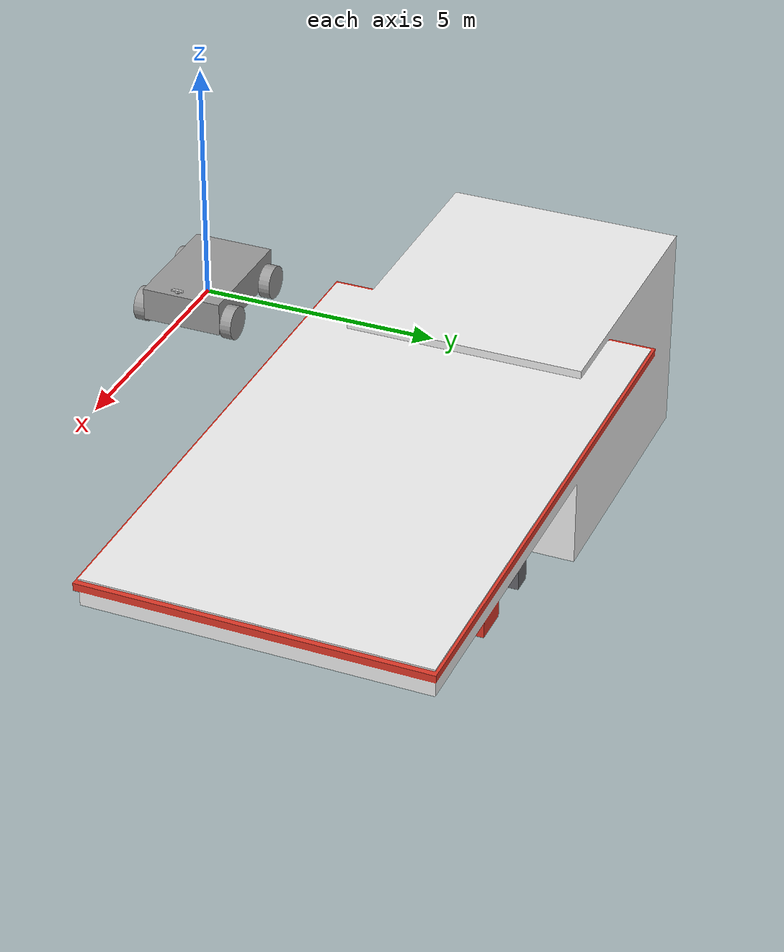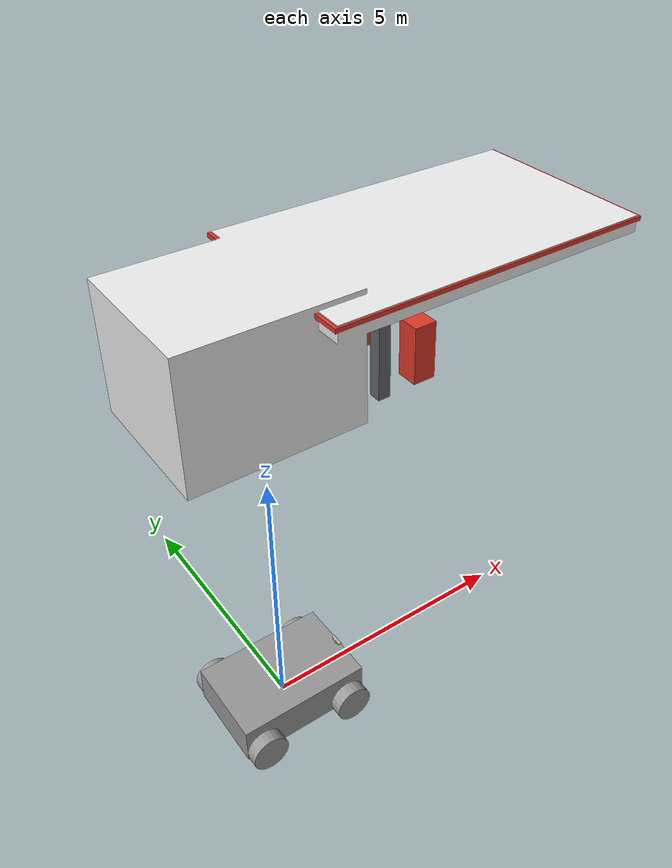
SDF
<?xml version='1.0'?>
<sdf version='1.6'>
  <model name='Kinect_Car'>
    <link name='link_0'>
      <inertial>
        <mass>3.1434</mass>
        <inertia>
          <ixx>0.877717</ixx>
          <ixy>0</ixy>
          <ixz>0</ixz>
          <iyy>1.7594</iyy>
          <iyz>0</iyz>
          <izz>2.39269</izz>
        </inertia>
        <pose frame=''>0 0 0 0 -0 0</pose>
      </inertial>
      <pose frame=''>-0 -0 0.16 0 -0 0</pose>
      <gravity>1</gravity>
      <self_collide>0</self_collide>
      <kinematic>0</kinematic>
      <enable_wind>0</enable_wind>
      <visual name='visual'>
        <pose frame=''>0 0 0 0 -0 0</pose>
        <geometry>
          <box>
            <size>2.5 1.7 0.7</size>
          </box>
        </geometry>
        <material>
          <lighting>1</lighting>
          <script>
            <uri>file://media/materials/scripts/gazebo.material</uri>
            <name>Gazebo/Grey</name>
          </script>
          <shader type='vertex'>
            <normal_map>__default__</normal_map>
          </shader>
          <ambient>0.3 0.3 0.3 1</ambient>
          <diffuse>0.7 0.7 0.7 1</diffuse>
          <specular>0.01 0.01 0.01 1</specular>
          <emissive>0 0 0 1</emissive>
        </material>
        <transparency>0</transparency>
        <cast_shadows>1</cast_shadows>
      </visual>
      <collision name='collision'>
        <laser_retro>0</laser_retro>
        <max_contacts>10</max_contacts>
        <pose frame=''>0 0 0 0 -0 0</pose>
        <geometry>
          <box>
            <size>2.5 1.69828 0.683043</size>
          </box>
        </geometry>
        <surface>
          <friction>
            <ode>
              <mu>1</mu>
              <mu2>1</mu2>
              <fdir1>0 0 0</fdir1>
              <slip1>0</slip1>
              <slip2>0</slip2>
            </ode>
            <torsional>
              <coefficient>1</coefficient>
              <patch_radius>0</patch_radius>
              <surface_radius>0</surface_radius>
              <use_patch_radius>1</use_patch_radius>
              <ode>
                <slip>0</slip>
              </ode>
            </torsional>
          </friction>
          <bounce>
            <restitution_coefficient>0</restitution_coefficient>
            <threshold>1e+06</threshold>
          </bounce>
          <contact>
            <collide_without_contact>0</collide_without_contact>
            <collide_without_contact_bitmask>1</collide_without_contact_bitmask>
            <collide_bitmask>1</collide_bitmask>
            <ode>
              <soft_cfm>0</soft_cfm>
              <soft_erp>0.2</soft_erp>
              <kp>1e+13</kp>
              <kd>1</kd>
              <max_vel>0.01</max_vel>
              <min_depth>0</min_depth>
            </ode>
            <bullet>
              <split_impulse>1</split_impulse>
              <split_impulse_penetration_threshold>-0.01</split_impulse_penetration_threshold>
              <soft_cfm>0</soft_cfm>
              <soft_erp>0.2</soft_erp>
              <kp>1e+13</kp>
              <kd>1</kd>
            </bullet>
          </contact>
        </surface>
      </collision>
    </link>
    <link name='link_0_0'>
      <inertial>
        <mass>0.0218115</mass>
        <inertia>
          <ixx>0.00528267</ixx>
          <ixy>0</ixy>
          <ixz>0</ixz>
          <iyy>0.00528267</iyy>
          <iyz>0</iyz>
          <izz>5.94636e-05</izz>
        </inertia>
        <pose frame=''>0 0 0 0 -0 0</pose>
      </inertial>
      <pose frame=''>0.866921 -2.6e-05 -0.073072 1.57 -0 0</pose>
      <gravity>1</gravity>
      <self_collide>0</self_collide>
      <kinematic>0</kinematic>
      <enable_wind>0</enable_wind>
      <visual name='visual'>
        <pose frame=''>0 0 0 0 -0 0</pose>
        <geometry>
          <cylinder>
            <radius>0.073841</radius>
            <length>1.7</length>
          </cylinder>
        </geometry>
        <material>
          <lighting>1</lighting>
          <script>
            <uri>file://media/materials/scripts/gazebo.material</uri>
            <name>Gazebo/Grey</name>
          </script>
          <shader type='vertex'>
            <normal_map>__default__</normal_map>
          </shader>
          <ambient>0.3 0.3 0.3 1</ambient>
          <diffuse>0.7 0.7 0.7 1</diffuse>
          <specular>0.01 0.01 0.01 1</specular>
          <emissive>0 0 0 1</emissive>
        </material>
        <transparency>0</transparency>
        <cast_shadows>1</cast_shadows>
      </visual>
      <collision name='collision'>
        <laser_retro>0</laser_retro>
        <max_contacts>10</max_contacts>
        <pose frame=''>0 0 0 0 -0 0</pose>
        <geometry>
          <cylinder>
            <radius>0.073841</radius>
            <length>1.7</length>
          </cylinder>
        </geometry>
        <surface>
          <friction>
            <ode>
              <mu>1</mu>
              <mu2>1</mu2>
              <fdir1>0 0 0</fdir1>
              <slip1>0</slip1>
              <slip2>0</slip2>
            </ode>
            <torsional>
              <coefficient>1</coefficient>
              <patch_radius>0</patch_radius>
              <surface_radius>0</surface_radius>
              <use_patch_radius>1</use_patch_radius>
              <ode>
                <slip>0</slip>
              </ode>
            </torsional>
          </friction>
          <bounce>
            <restitution_coefficient>0</restitution_coefficient>
            <threshold>1e+06</threshold>
          </bounce>
          <contact>
            <collide_without_contact>0</collide_without_contact>
            <collide_without_contact_bitmask>1</collide_without_contact_bitmask>
            <collide_bitmask>1</collide_bitmask>
            <ode>
              <soft_cfm>0</soft_cfm>
              <soft_erp>0.2</soft_erp>
              <kp>1e+13</kp>
              <kd>1</kd>
              <max_vel>0.01</max_vel>
              <min_depth>0</min_depth>
            </ode>
            <bullet>
              <split_impulse>1</split_impulse>
              <split_impulse_penetration_threshold>-0.01</split_impulse_penetration_threshold>
              <soft_cfm>0</soft_cfm>
              <soft_erp>0.2</soft_erp>
              <kp>1e+13</kp>
              <kd>1</kd>
            </bullet>
          </contact>
        </surface>
      </collision>
    </link>
    <link name='link_0_0_clone'>
      <inertial>
        <mass>0.0218115</mass>
        <inertia>
          <ixx>0.00528267</ixx>
          <ixy>0</ixy>
          <ixz>0</ixz>
          <iyy>0.00528267</iyy>
          <iyz>0</iyz>
          <izz>5.94636e-05</izz>
        </inertia>
        <pose frame=''>0 0 0 0 -0 0</pose>
      </inertial>
      <pose frame=''>-0.89931 -0.00067 -0.039992 1.57 -2.8e-05 0.000745</pose>
      <gravity>1</gravity>
      <self_collide>0</self_collide>
      <kinematic>0</kinematic>
      <enable_wind>0</enable_wind>
      <visual name='visual'>
        <pose frame=''>0 0 0 0 -0 0</pose>
        <geometry>
          <cylinder>
            <radius>0.073841</radius>
            <length>1.7</length>
          </cylinder>
        </geometry>
        <material>
          <lighting>1</lighting>
          <script>
            <uri>file://media/materials/scripts/gazebo.material</uri>
            <name>Gazebo/Grey</name>
          </script>
          <shader type='vertex'>
            <normal_map>__default__</normal_map>
          </shader>
          <ambient>0.3 0.3 0.3 1</ambient>
          <diffuse>0.7 0.7 0.7 1</diffuse>
          <specular>0.01 0.01 0.01 1</specular>
          <emissive>0 0 0 1</emissive>
        </material>
        <transparency>0</transparency>
        <cast_shadows>1</cast_shadows>
      </visual>
      <collision name='collision'>
        <laser_retro>0</laser_retro>
        <max_contacts>10</max_contacts>
        <pose frame=''>0 0 0 0 -0 0</pose>
        <geometry>
          <cylinder>
            <radius>0.073841</radius>
            <length>1.7</length>
          </cylinder>
        </geometry>
        <surface>
          <friction>
            <ode>
              <mu>1</mu>
              <mu2>1</mu2>
              <fdir1>0 0 0</fdir1>
              <slip1>0</slip1>
              <slip2>0</slip2>
            </ode>
            <torsional>
              <coefficient>1</coefficient>
              <patch_radius>0</patch_radius>
              <surface_radius>0</surface_radius>
              <use_patch_radius>1</use_patch_radius>
              <ode>
                <slip>0</slip>
              </ode>
            </torsional>
          </friction>
          <bounce>
            <restitution_coefficient>0</restitution_coefficient>
            <threshold>1e+06</threshold>
          </bounce>
          <contact>
            <collide_without_contact>0</collide_without_contact>
            <collide_without_contact_bitmask>1</collide_without_contact_bitmask>
            <collide_bitmask>1</collide_bitmask>
            <ode>
              <soft_cfm>0</soft_cfm>
              <soft_erp>0.2</soft_erp>
              <kp>1e+13</kp>
              <kd>1</kd>
              <max_vel>0.01</max_vel>
              <min_depth>0</min_depth>
            </ode>
            <bullet>
              <split_impulse>1</split_impulse>
              <split_impulse_penetration_threshold>-0.01</split_impulse_penetration_threshold>
              <soft_cfm>0</soft_cfm>
              <soft_erp>0.2</soft_erp>
              <kp>1e+13</kp>
              <kd>1</kd>
            </bullet>
          </contact>
        </surface>
      </collision>
    </link>
    <link name='link_1'>
      <inertial>
        <mass>0.243107</mass>
        <inertia>
          <ixx>0.00864251</ixx>
          <ixy>0</ixy>
          <ixz>0</ixz>
          <iyy>0.00864251</iyy>
          <iyz>0</iyz>
          <izz>0.0148903</izz>
        </inertia>
        <pose frame=''>0 0 0 0 -0 0</pose>
      </inertial>
      <pose frame=''>0.9 -0.970974 -0.04 1.57 -0 0</pose>
      <gravity>1</gravity>
      <self_collide>0</self_collide>
      <kinematic>0</kinematic>
      <enable_wind>0</enable_wind>
      <visual name='visual'>
        <pose frame=''>0 0 0 0 -0 0</pose>
        <geometry>
          <cylinder>
            <radius>0.35</radius>
            <length>0.243109</length>
          </cylinder>
        </geometry>
        <material>
          <lighting>1</lighting>
          <script>
            <uri>file://media/materials/scripts/gazebo.material</uri>
            <name>Gazebo/Grey</name>
          </script>
          <shader type='vertex'>
            <normal_map>__default__</normal_map>
          </shader>
          <ambient>0.3 0.3 0.3 1</ambient>
          <diffuse>0.7 0.7 0.7 1</diffuse>
          <specular>0.01 0.01 0.01 1</specular>
          <emissive>0 0 0 1</emissive>
        </material>
        <transparency>0</transparency>
        <cast_shadows>1</cast_shadows>
      </visual>
      <collision name='collision'>
        <laser_retro>0</laser_retro>
        <max_contacts>10</max_contacts>
        <pose frame=''>0 0 0 0 -0 0</pose>
        <geometry>
          <cylinder>
            <radius>0.35</radius>
            <length>0.243109</length>
          </cylinder>
        </geometry>
        <surface>
          <friction>
            <ode>
              <mu>1</mu>
              <mu2>1</mu2>
              <fdir1>0 0 0</fdir1>
              <slip1>0</slip1>
              <slip2>0</slip2>
            </ode>
            <torsional>
              <coefficient>1</coefficient>
              <patch_radius>0</patch_radius>
              <surface_radius>0</surface_radius>
              <use_patch_radius>1</use_patch_radius>
              <ode>
                <slip>0</slip>
              </ode>
            </torsional>
          </friction>
          <bounce>
            <restitution_coefficient>0</restitution_coefficient>
            <threshold>1e+06</threshold>
          </bounce>
          <contact>
            <collide_without_contact>0</collide_without_contact>
            <collide_without_contact_bitmask>1</collide_without_contact_bitmask>
            <collide_bitmask>1</collide_bitmask>
            <ode>
              <soft_cfm>0</soft_cfm>
              <soft_erp>0.2</soft_erp>
              <kp>1e+13</kp>
              <kd>1</kd>
              <max_vel>0.01</max_vel>
              <min_depth>0</min_depth>
            </ode>
            <bullet>
              <split_impulse>1</split_impulse>
              <split_impulse_penetration_threshold>-0.01</split_impulse_penetration_threshold>
              <soft_cfm>0</soft_cfm>
              <soft_erp>0.2</soft_erp>
              <kp>1e+13</kp>
              <kd>1</kd>
            </bullet>
          </contact>
        </surface>
      </collision>
    </link>
    <link name='link_1_clone'>
      <inertial>
        <mass>0.243107</mass>
        <inertia>
          <ixx>0.00864251</ixx>
          <ixy>0</ixy>
          <ixz>0</ixz>
          <iyy>0.00864251</iyy>
          <iyz>0</iyz>
          <izz>0.0148903</izz>
        </inertia>
        <pose frame=''>0 0 0 0 -0 0</pose>
      </inertial>
      <pose frame=''>0.9 0.970974 -0.04 1.57 -0 0</pose>
      <gravity>1</gravity>
      <self_collide>0</self_collide>
      <kinematic>0</kinematic>
      <enable_wind>0</enable_wind>
      <visual name='visual'>
        <pose frame=''>0 0 0 0 -0 0</pose>
        <geometry>
          <cylinder>
            <radius>0.35</radius>
            <length>0.243109</length>
          </cylinder>
        </geometry>
        <material>
          <lighting>1</lighting>
          <script>
            <uri>file://media/materials/scripts/gazebo.material</uri>
            <name>Gazebo/Grey</name>
          </script>
          <shader type='vertex'>
            <normal_map>__default__</normal_map>
          </shader>
          <ambient>0.3 0.3 0.3 1</ambient>
          <diffuse>0.7 0.7 0.7 1</diffuse>
          <specular>0.01 0.01 0.01 1</specular>
          <emissive>0 0 0 1</emissive>
        </material>
        <transparency>0</transparency>
        <cast_shadows>1</cast_shadows>
      </visual>
      <collision name='collision'>
        <laser_retro>0</laser_retro>
        <max_contacts>10</max_contacts>
        <pose frame=''>0 0 0 0 -0 0</pose>
        <geometry>
          <cylinder>
            <radius>0.35</radius>
            <length>0.243109</length>
          </cylinder>
        </geometry>
        <surface>
          <friction>
            <ode>
              <mu>1</mu>
              <mu2>1</mu2>
              <fdir1>0 0 0</fdir1>
              <slip1>0</slip1>
              <slip2>0</slip2>
            </ode>
            <torsional>
              <coefficient>1</coefficient>
              <patch_radius>0</patch_radius>
              <surface_radius>0</surface_radius>
              <use_patch_radius>1</use_patch_radius>
              <ode>
                <slip>0</slip>
              </ode>
            </torsional>
          </friction>
          <bounce>
            <restitution_coefficient>0</restitution_coefficient>
            <threshold>1e+06</threshold>
          </bounce>
          <contact>
            <collide_without_contact>0</collide_without_contact>
            <collide_without_contact_bitmask>1</collide_without_contact_bitmask>
            <collide_bitmask>1</collide_bitmask>
            <ode>
              <soft_cfm>0</soft_cfm>
              <soft_erp>0.2</soft_erp>
              <kp>1e+13</kp>
              <kd>1</kd>
              <max_vel>0.01</max_vel>
              <min_depth>0</min_depth>
            </ode>
            <bullet>
              <split_impulse>1</split_impulse>
              <split_impulse_penetration_threshold>-0.01</split_impulse_penetration_threshold>
              <soft_cfm>0</soft_cfm>
              <soft_erp>0.2</soft_erp>
              <kp>1e+13</kp>
              <kd>1</kd>
            </bullet>
          </contact>
        </surface>
      </collision>
    </link>
    <link name='link_1_clone_0'>
      <inertial>
        <mass>0.243107</mass>
        <inertia>
          <ixx>0.00864251</ixx>
          <ixy>0</ixy>
          <ixz>0</ixz>
          <iyy>0.00864251</iyy>
          <iyz>0</iyz>
          <izz>0.0148903</izz>
        </inertia>
        <pose frame=''>0 0 0 0 -0 0</pose>
      </inertial>
      <pose frame=''>-0.899995 -0.971895 -0.04 1.57 -0 0</pose>
      <gravity>1</gravity>
      <self_collide>0</self_collide>
      <kinematic>0</kinematic>
      <enable_wind>0</enable_wind>
      <visual name='visual'>
        <pose frame=''>0 0 0 0 -0 0</pose>
        <geometry>
          <cylinder>
            <radius>0.35</radius>
            <length>0.243109</length>
          </cylinder>
        </geometry>
        <material>
          <lighting>1</lighting>
          <script>
            <uri>file://media/materials/scripts/gazebo.material</uri>
            <name>Gazebo/Grey</name>
          </script>
          <shader type='vertex'>
            <normal_map>__default__</normal_map>
          </shader>
          <ambient>0.3 0.3 0.3 1</ambient>
          <diffuse>0.7 0.7 0.7 1</diffuse>
          <specular>0.01 0.01 0.01 1</specular>
          <emissive>0 0 0 1</emissive>
        </material>
        <transparency>0</transparency>
        <cast_shadows>1</cast_shadows>
      </visual>
      <collision name='collision'>
        <laser_retro>0</laser_retro>
        <max_contacts>10</max_contacts>
        <pose frame=''>0 0 0 0 -0 0</pose>
        <geometry>
          <cylinder>
            <radius>0.35</radius>
            <length>0.243109</length>
          </cylinder>
        </geometry>
        <surface>
          <friction>
            <ode>
              <mu>1</mu>
              <mu2>1</mu2>
              <fdir1>0 0 0</fdir1>
              <slip1>0</slip1>
              <slip2>0</slip2>
            </ode>
            <torsional>
              <coefficient>1</coefficient>
              <patch_radius>0</patch_radius>
              <surface_radius>0</surface_radius>
              <use_patch_radius>1</use_patch_radius>
              <ode>
                <slip>0</slip>
              </ode>
            </torsional>
          </friction>
          <bounce>
            <restitution_coefficient>0</restitution_coefficient>
            <threshold>1e+06</threshold>
          </bounce>
          <contact>
            <collide_without_contact>0</collide_without_contact>
            <collide_without_contact_bitmask>1</collide_without_contact_bitmask>
            <collide_bitmask>1</collide_bitmask>
            <ode>
              <soft_cfm>0</soft_cfm>
              <soft_erp>0.2</soft_erp>
              <kp>1e+13</kp>
              <kd>1</kd>
              <max_vel>0.01</max_vel>
              <min_depth>0</min_depth>
            </ode>
            <bullet>
              <split_impulse>1</split_impulse>
              <split_impulse_penetration_threshold>-0.01</split_impulse_penetration_threshold>
              <soft_cfm>0</soft_cfm>
              <soft_erp>0.2</soft_erp>
              <kp>1e+13</kp>
              <kd>1</kd>
            </bullet>
          </contact>
        </surface>
      </collision>
    </link>
    <link name='link_1_clone_1'>
      <inertial>
        <mass>0.243107</mass>
        <inertia>
          <ixx>0.00864251</ixx>
          <ixy>0</ixy>
          <ixz>0</ixz>
          <iyy>0.00864251</iyy>
          <iyz>0</iyz>
          <izz>0.0148903</izz>
        </inertia>
        <pose frame=''>0 0 0 0 -0 0</pose>
      </inertial>
      <pose frame=''>-0.900042 0.990296 -0.04 1.57 -0 0</pose>
      <gravity>1</gravity>
      <self_collide>0</self_collide>
      <kinematic>0</kinematic>
      <enable_wind>0</enable_wind>
      <visual name='visual'>
        <pose frame=''>0 0 0 0 -0 0</pose>
        <geometry>
          <cylinder>
            <radius>0.35</radius>
            <length>0.243109</length>
          </cylinder>
        </geometry>
        <material>
          <lighting>1</lighting>
          <script>
            <uri>file://media/materials/scripts/gazebo.material</uri>
            <name>Gazebo/Grey</name>
          </script>
          <shader type='vertex'>
            <normal_map>__default__</normal_map>
          </shader>
          <ambient>0.3 0.3 0.3 1</ambient>
          <diffuse>0.7 0.7 0.7 1</diffuse>
          <specular>0.01 0.01 0.01 1</specular>
          <emissive>0 0 0 1</emissive>
        </material>
        <transparency>0</transparency>
        <cast_shadows>1</cast_shadows>
      </visual>
      <collision name='collision'>
        <laser_retro>0</laser_retro>
        <max_contacts>10</max_contacts>
        <pose frame=''>0 0 0 0 -0 0</pose>
        <geometry>
          <cylinder>
            <radius>0.35</radius>
            <length>0.243109</length>
          </cylinder>
        </geometry>
        <surface>
          <friction>
            <ode>
              <mu>1</mu>
              <mu2>1</mu2>
              <fdir1>0 0 0</fdir1>
              <slip1>0</slip1>
              <slip2>0</slip2>
            </ode>
            <torsional>
              <coefficient>1</coefficient>
              <patch_radius>0</patch_radius>
              <surface_radius>0</surface_radius>
              <use_patch_radius>1</use_patch_radius>
              <ode>
                <slip>0</slip>
              </ode>
            </torsional>
          </friction>
          <bounce>
            <restitution_coefficient>0</restitution_coefficient>
            <threshold>1e+06</threshold>
          </bounce>
          <contact>
            <collide_without_contact>0</collide_without_contact>
            <collide_without_contact_bitmask>1</collide_without_contact_bitmask>
            <collide_bitmask>1</collide_bitmask>
            <ode>
              <soft_cfm>0</soft_cfm>
              <soft_erp>0.2</soft_erp>
              <kp>1e+13</kp>
              <kd>1</kd>
              <max_vel>0.01</max_vel>
              <min_depth>0</min_depth>
            </ode>
            <bullet>
              <split_impulse>1</split_impulse>
              <split_impulse_penetration_threshold>-0.01</split_impulse_penetration_threshold>
              <soft_cfm>0</soft_cfm>
              <soft_erp>0.2</soft_erp>
              <kp>1e+13</kp>
              <kd>1</kd>
            </bullet>
          </contact>
        </surface>
      </collision>
    </link>
    <model name='Gas Station'>
      <static>1</static>
      <link name='link'>
        <pose frame=''>0 0 0 0 -0 0</pose>
        <collision name='collision'>
          <geometry>
            <mesh>
              <uri>model://gas_station/meshes/gas_station.dae</uri>
            </mesh>
          </geometry>
        </collision>
        <visual name='visual'>
          <geometry>
            <mesh>
              <uri>model://gas_station/meshes/gas_station.dae</uri>
            </mesh>
          </geometry>
          <material>
            <script>
              <uri>model://gas_station/materials/scripts</uri>
              <uri>model://gas_station/materials/textures</uri>
              <name>GasStation/Diffuse</name>
            </script>
            <shader type='normal_map_tangent_space'>
              <normal_map>GasStation_Normal.png</normal_map>
            </shader>
          </material>
        </visual>
      </link>
      <pose frame=''>7.3736 8.03875 -1.3e-05 0 -0 0</pose>
    </model>
    <model name='kinect'>
      <pose frame=''>1.21601 -0.090732 0.604917 0 -0 0</pose>
      <link name='link'>
        <inertial>
          <mass>0.1</mass>
        </inertial>
        <collision name='collision'>
          <geometry>
            <box>
              <size>0.073 0.276 0.072</size>
            </box>
          </geometry>
        </collision>
        <visual name='visual'>
          <geometry>
            <mesh>
              <uri>model://kinect/meshes/kinect.dae</uri>
            </mesh>
          </geometry>
        </visual>
        <sensor name='camera' type='depth'>
          <update_rate>20</update_rate>
          <camera name='__default__'>
            <horizontal_fov>1.0472</horizontal_fov>
            <image>
              <width>640</width>
              <height>480</height>
              <format>R8G8B8</format>
            </image>
            <clip>
              <near>0.05</near>
              <far>3</far>
            </clip>
          </camera>
          <plugin name='camera_plugin' filename='libgazebo_ros_openni_kinect.so'>
            <baseline>0.2</baseline>
            <alwaysOn>1</alwaysOn>
            <updateRate>0.0</updateRate>
            <cameraName>camera_ir</cameraName>
            <imageTopicName>/camera/color/image_raw</imageTopicName>
            <cameraInfoTopicName>/camera/color/camera_info</cameraInfoTopicName>
            <depthImageTopicName>/camera/depth/image_raw</depthImageTopicName>
            <depthImageCameraInfoTopicName>/camera/depth/camera_info</depthImageCameraInfoTopicName>
            <pointCloudTopicName>/camera/depth/points</pointCloudTopicName>
            <frameName>camera_link</frameName>
            <pointCloudCutoff>0.5</pointCloudCutoff>
            <pointCloudCutoffMax>3.0</pointCloudCutoffMax>
            <distortionK1>0</distortionK1>
            <distortionK2>0</distortionK2>
            <distortionK3>0</distortionK3>
            <distortionT1>0</distortionT1>
            <distortionT2>0</distortionT2>
            <CxPrime>0</CxPrime>
            <Cx>0</Cx>
            <Cy>0</Cy>
            <focalLength>0</focalLength>
            <hackBaseline>0</hackBaseline>
          </plugin>
        </sensor>
      </link>
    </model>

    <joint name='Engine' type='revolute'>
      <parent>link_0</parent>
      <child>link_0_0_clone</child>
      <pose frame=''>0 0 0 0 -0 0</pose>
      <axis>
        <xyz>0 0 1</xyz>
        <use_parent_model_frame>0</use_parent_model_frame>
        <limit>
          <lower>-1.79769e+308</lower>
          <upper>1.79769e+308</upper>
          <effort>-1</effort>
          <velocity>-1</velocity>
        </limit>
        <dynamics>
          <spring_reference>0</spring_reference>
          <spring_stiffness>0</spring_stiffness>
          <damping>0</damping>
          <friction>0</friction>
        </dynamics>
      </axis>
      <physics>
        <ode>
          <limit>
            <cfm>0</cfm>
            <erp>0.2</erp>
          </limit>
          <suspension>
            <cfm>0</cfm>
            <erp>0.2</erp>
          </suspension>
        </ode>
      </physics>
    </joint>
    <joint name='Steering' type='revolute'>
      <parent>link_0</parent>
      <child>link_0_0</child>
      <pose frame=''>0 0 0 0 -0 0</pose>
      <axis>
        <xyz>0 1 0</xyz>
        <use_parent_model_frame>0</use_parent_model_frame>
        <limit>
          <lower>-0.523599</lower>
          <upper>0.523599</upper>
          <effort>-1</effort>
          <velocity>-1</velocity>
        </limit>
        <dynamics>
          <spring_reference>0</spring_reference>
          <spring_stiffness>0</spring_stiffness>
          <damping>0</damping>
          <friction>0</friction>
        </dynamics>
      </axis>
      <physics>
        <ode>
          <limit>
            <cfm>0</cfm>
            <erp>0.2</erp>
          </limit>
          <suspension>
            <cfm>0</cfm>
            <erp>0.2</erp>
          </suspension>
        </ode>
      </physics>
    </joint>
    <joint name='link_0_0_JOINT_1' type='revolute'>
      <parent>link_0_0</parent>
      <child>link_1</child>
      <pose frame=''>0 0 0 0 -0 0</pose>
      <axis>
        <xyz>0 0 1</xyz>
        <use_parent_model_frame>0</use_parent_model_frame>
        <limit>
          <lower>-1.79769e+308</lower>
          <upper>1.79769e+308</upper>
          <effort>-1</effort>
          <velocity>-1</velocity>
        </limit>
        <dynamics>
          <spring_reference>0</spring_reference>
          <spring_stiffness>0</spring_stiffness>
          <damping>0</damping>
          <friction>0</friction>
        </dynamics>
      </axis>
      <physics>
        <ode>
          <limit>
            <cfm>0</cfm>
            <erp>0.2</erp>
          </limit>
          <suspension>
            <cfm>0</cfm>
            <erp>0.2</erp>
          </suspension>
        </ode>
      </physics>
    </joint>
    <joint name='link_0_0_JOINT_2' type='revolute'>
      <parent>link_0_0</parent>
      <child>link_1_clone</child>
      <pose frame=''>0 0 0 0 -0 0</pose>
      <axis>
        <xyz>0 0 -1</xyz>
        <use_parent_model_frame>0</use_parent_model_frame>
        <limit>
          <lower>-1.79769e+308</lower>
          <upper>1.79769e+308</upper>
          <effort>-1</effort>
          <velocity>-1</velocity>
        </limit>
        <dynamics>
          <spring_reference>0</spring_reference>
          <spring_stiffness>0</spring_stiffness>
          <damping>0</damping>
          <friction>0</friction>
        </dynamics>
      </axis>
      <physics>
        <ode>
          <limit>
            <cfm>0</cfm>
            <erp>0.2</erp>
          </limit>
          <suspension>
            <cfm>0</cfm>
            <erp>0.2</erp>
          </suspension>
        </ode>
      </physics>
    </joint>
    <joint name='link_0_0_clone_JOINT_0' type='fixed'>
      <parent>link_0_0_clone</parent>
      <child>link_1_clone_1</child>
      <pose frame=''>0 0 0 0 -0 0</pose>
      <physics>
        <ode>
          <limit>
            <cfm>0</cfm>
            <erp>0.2</erp>
          </limit>
          <suspension>
            <cfm>0</cfm>
            <erp>0.2</erp>
          </suspension>
        </ode>
      </physics>
    </joint>
    <joint name='link_0_JOINT_0' type='fixed'>
      <parent>link_0</parent>
      <child>kinect::link</child>
      <pose frame=''>0 0 0 0 -0 0</pose>
      <physics>
        <ode>
          <limit>
            <cfm>0</cfm>
            <erp>0.2</erp>
          </limit>
          <suspension>
            <cfm>0</cfm>
            <erp>0.2</erp>
          </suspension>
        </ode>
      </physics>
    </joint>
    <joint name='link_1_clone_0_JOINT_3' type='fixed'>
      <parent>link_0_0_clone</parent>
      <child>link_1_clone_0</child>
      <pose frame=''>0 0 0 0 -0 0</pose>
      <physics>
        <ode>
          <limit>
            <cfm>0</cfm>
            <erp>0.2</erp>
          </limit>
          <suspension>
            <cfm>0</cfm>
            <erp>0.2</erp>
          </suspension>
        </ode>
      </physics>
    </joint>
    <static>0</static>
    <allow_auto_disable>1</allow_auto_disable>
  </model>
</sdf>
